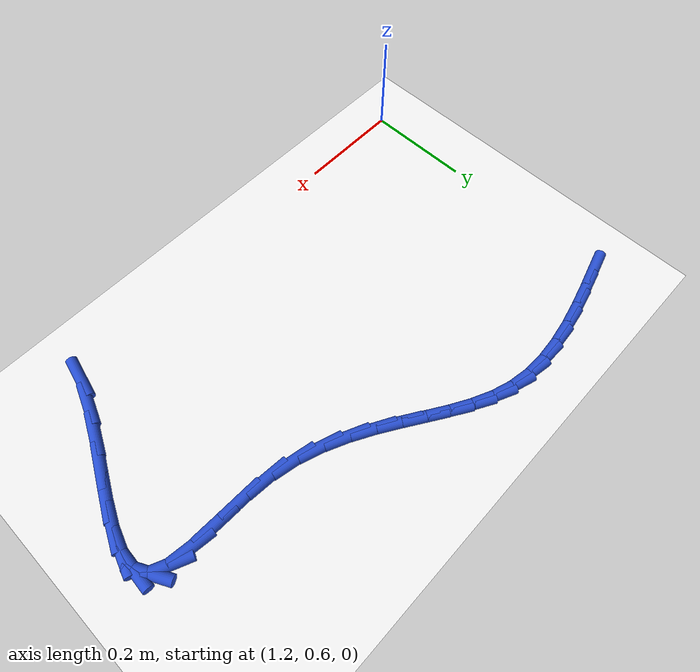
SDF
<sdf version="1.6">
 <world name="default">
  <model name="ground_plane">
   <static>1</static>
   <link name="link">
    <collision name="collision">
     <geometry><plane><normal>0 0 1</normal><size>100 100</size></plane></geometry>
     <surface><friction><ode><mu>100</mu><mu2>50</mu2></ode></friction></surface>
    </collision>
    <visual name="visual">
     <cast_shadows>0</cast_shadows>
     <geometry><plane><normal>0 0 1</normal><size>100 100</size></plane></geometry>
     <material>
      <script><uri>file://media/materials/scripts/gazebo.material</uri><name>Gazebo/WhiteGlow</name></script>
     </material>
    </visual>
   </link>
  </model>
  <model name="line">
   <link name="link_45">
    <pose>1.212922668888443 1.1336674801054099 0.01 0 1.57 0.26476621296448294</pose>
    <collision name="collision">
     <geometry><cylinder><radius>0.01</radius><length>0.08</length></cylinder></geometry>
    </collision>
    <visual name="visual">
     <material>
      <script><name>Gazebo/Blue</name><uri>file://media/materials/scripts/gazebo.material</uri></script>
     </material>
     <geometry><cylinder><radius>0.01</radius><length>0.08</length></cylinder></geometry>
    </visual>
   </link>
   <link name="link_46">
    <pose>1.2562330443745857 1.145410290002569 0.01 0 1.57 0.243206262841886</pose>
    <collision name="collision">
     <geometry><cylinder><radius>0.01</radius><length>0.08</length></cylinder></geometry>
    </collision>
    <visual name="visual">
     <material>
      <script><name>Gazebo/Blue</name><uri>file://media/materials/scripts/gazebo.material</uri></script>
     </material>
     <geometry><cylinder><radius>0.01</radius><length>0.08</length></cylinder></geometry>
    </visual>
   </link>
   <link name="link_47">
    <pose>1.2988552021292605 1.1559855999121016 0.01 0 1.57 0.20406574075876835</pose>
    <collision name="collision">
     <geometry><cylinder><radius>0.01</radius><length>0.08</length></cylinder></geometry>
    </collision>
    <visual name="visual">
     <material>
      <script><name>Gazebo/Blue</name><uri>file://media/materials/scripts/gazebo.material</uri></script>
     </material>
     <geometry><cylinder><radius>0.01</radius><length>0.08</length></cylinder></geometry>
    </visual>
   </link>
   <link name="link_48">
    <pose>1.340679602740774 1.1646410072881557 0.01 0 1.57 0.14519595741874367</pose>
    <collision name="collision">
     <geometry><cylinder><radius>0.01</radius><length>0.08</length></cylinder></geometry>
    </collision>
    <visual name="visual">
     <material>
      <script><name>Gazebo/Blue</name><uri>file://media/materials/scripts/gazebo.material</uri></script>
     </material>
     <geometry><cylinder><radius>0.01</radius><length>0.08</length></cylinder></geometry>
    </visual>
   </link>
   <link name="link_49">
    <pose>1.3815967067974313 1.1706241095848755 0.01 0 1.57 0.06403207982112052</pose>
    <collision name="collision">
     <geometry><cylinder><radius>0.01</radius><length>0.08</length></cylinder></geometry>
    </collision>
    <visual name="visual">
     <material>
      <script><name>Gazebo/Blue</name><uri>file://media/materials/scripts/gazebo.material</uri></script>
     </material>
     <geometry><cylinder><radius>0.01</radius><length>0.08</length></cylinder></geometry>
    </visual>
   </link>
   <link name="link_50">
    <pose>1.4214969748875377 1.1731825042564084 0.01 0 1.57 -0.04172333420575803</pose>
    <collision name="collision">
     <geometry><cylinder><radius>0.01</radius><length>0.08</length></cylinder></geometry>
    </collision>
    <visual name="visual">
     <material>
      <script><name>Gazebo/Blue</name><uri>file://media/materials/scripts/gazebo.material</uri></script>
     </material>
     <geometry><cylinder><radius>0.01</radius><length>0.08</length></cylinder></geometry>
    </visual>
   </link>
   <link name="link_51">
    <pose>1.460270867599398 1.1715637887568984 0.01 0 1.57 -0.172704927068935</pose>
    <collision name="collision">
     <geometry><cylinder><radius>0.01</radius><length>0.08</length></cylinder></geometry>
    </collision>
    <visual name="visual">
     <material>
      <script><name>Gazebo/Blue</name><uri>file://media/materials/scripts/gazebo.material</uri></script>
     </material>
     <geometry><cylinder><radius>0.01</radius><length>0.08</length></cylinder></geometry>
    </visual>
   </link>
   <link name="link_52">
    <pose>1.4978088455213197 1.165015560540493 0.01 0 1.57 -0.3195023220120659</pose>
    <collision name="collision">
     <geometry><cylinder><radius>0.01</radius><length>0.08</length></cylinder></geometry>
    </collision>
    <visual name="visual">
     <material>
      <script><name>Gazebo/Blue</name><uri>file://media/materials/scripts/gazebo.material</uri></script>
     </material>
     <geometry><cylinder><radius>0.01</radius><length>0.08</length></cylinder></geometry>
    </visual>
   </link>
   <link name="link_53">
    <pose>1.5340769796274079 1.1530167139164735 0.01 0 1.57 -0.44034441701610094</pose>
    <collision name="collision">
     <geometry><cylinder><radius>0.01</radius><length>0.08</length></cylinder></geometry>
    </collision>
    <visual name="visual">
     <material>
      <script><name>Gazebo/Blue</name><uri>file://media/materials/scripts/gazebo.material</uri></script>
     </material>
     <geometry><cylinder><radius>0.01</radius><length>0.08</length></cylinder></geometry>
    </visual>
   </link>
   <link name="link_54">
    <pose>1.5694649117307469 1.136341872635817 0.01 0 1.57 -0.5212878407982343</pose>
    <collision name="collision">
     <geometry><cylinder><radius>0.01</radius><length>0.08</length></cylinder></geometry>
    </collision>
    <visual name="visual">
     <material>
      <script><name>Gazebo/Blue</name><uri>file://media/materials/scripts/gazebo.material</uri></script>
     </material>
     <geometry><cylinder><radius>0.01</radius><length>0.08</length></cylinder></geometry>
    </visual>
   </link>
   <link name="link_55">
    <pose>1.604509693510012 1.1162165963621486 0.01 0 1.57 -0.565212544174314</pose>
    <collision name="collision">
     <geometry><cylinder><radius>0.01</radius><length>0.08</length></cylinder></geometry>
    </collision>
    <visual name="visual">
     <material>
      <script><name>Gazebo/Blue</name><uri>file://media/materials/scripts/gazebo.material</uri></script>
     </material>
     <geometry><cylinder><radius>0.01</radius><length>0.08</length></cylinder></geometry>
    </visual>
   </link>
   <link name="link_56">
    <pose>1.6397485259787012 1.093866901583568 0.01 0 1.57 -0.5757406119897641</pose>
    <collision name="collision">
     <geometry><cylinder><radius>0.01</radius><length>0.08</length></cylinder></geometry>
    </collision>
    <visual name="visual">
     <material>
      <script><name>Gazebo/Blue</name><uri>file://media/materials/scripts/gazebo.material</uri></script>
     </material>
     <geometry><cylinder><radius>0.01</radius><length>0.08</length></cylinder></geometry>
    </visual>
   </link>
   <link name="link_57">
    <pose>1.6757186101503105 1.0705188047881729 0.01 0 1.57 -0.5556276335707667</pose>
    <collision name="collision">
     <geometry><cylinder><radius>0.01</radius><length>0.08</length></cylinder></geometry>
    </collision>
    <visual name="visual">
     <material>
      <script><name>Gazebo/Blue</name><uri>file://media/materials/scripts/gazebo.material</uri></script>
     </material>
     <geometry><cylinder><radius>0.01</radius><length>0.08</length></cylinder></geometry>
    </visual>
   </link>
   <link name="link_58">
    <pose>1.7129571470383385 1.0473983224640606 0.01 0 1.57 -0.5066215073512923</pose>
    <collision name="collision">
     <geometry><cylinder><radius>0.01</radius><length>0.08</length></cylinder></geometry>
    </collision>
    <visual name="visual">
     <material>
      <script><name>Gazebo/Blue</name><uri>file://media/materials/scripts/gazebo.material</uri></script>
     </material>
     <geometry><cylinder><radius>0.01</radius><length>0.08</length></cylinder></geometry>
    </visual>
   </link>
   <link name="link_59">
    <pose>1.7520013376562806 1.0257314710993297 0.01 0 1.57 -0.4301244598763836</pose>
    <collision name="collision">
     <geometry><cylinder><radius>0.01</radius><length>0.08</length></cylinder></geometry>
    </collision>
    <visual name="visual">
     <material>
      <script><name>Gazebo/Blue</name><uri>file://media/materials/scripts/gazebo.material</uri></script>
     </material>
     <geometry><cylinder><radius>0.01</radius><length>0.08</length></cylinder></geometry>
    </visual>
   </link>
   <link name="link_60">
    <pose>1.7933883830176351 1.0067442671820779 0.01 0 1.57 -0.3283605476052916</pose>
    <collision name="collision">
     <geometry><cylinder><radius>0.01</radius><length>0.08</length></cylinder></geometry>
    </collision>
    <visual name="visual">
     <material>
      <script><name>Gazebo/Blue</name><uri>file://media/materials/scripts/gazebo.material</uri></script>
     </material>
     <geometry><cylinder><radius>0.01</radius><length>0.08</length></cylinder></geometry>
    </visual>
   </link>
   <link name="link_61">
    <pose>1.8376554841358985 0.9916627272004038 0.01 0 1.57 -0.20570927977166567</pose>
    <collision name="collision">
     <geometry><cylinder><radius>0.01</radius><length>0.08</length></cylinder></geometry>
    </collision>
    <visual name="visual">
     <material>
      <script><name>Gazebo/Blue</name><uri>file://media/materials/scripts/gazebo.material</uri></script>
     </material>
     <geometry><cylinder><radius>0.01</radius><length>0.08</length></cylinder></geometry>
    </visual>
   </link>
   <link name="link_62">
    <pose>1.885339842024568 0.981712867642405 0.01 0 1.57 -0.08412807927843689</pose>
    <collision name="collision">
     <geometry><cylinder><radius>0.01</radius><length>0.08</length></cylinder></geometry>
    </collision>
    <visual name="visual">
     <material>
      <script><name>Gazebo/Blue</name><uri>file://media/materials/scripts/gazebo.material</uri></script>
     </material>
     <geometry><cylinder><radius>0.01</radius><length>0.08</length></cylinder></geometry>
    </visual>
   </link>
   <link name="link_63">
    <pose>1.9362745459773723 0.9774176909599253 0.01 0 1.57 -0.0230302165221149</pose>
    <collision name="collision">
     <geometry><cylinder><radius>0.01</radius><length>0.08</length></cylinder></geometry>
    </collision>
    <visual name="visual">
     <material>
      <script><name>Gazebo/Blue</name><uri>file://media/materials/scripts/gazebo.material</uri></script>
     </material>
     <geometry><cylinder><radius>0.01</radius><length>0.08</length></cylinder></geometry>
    </visual>
   </link>
   <link name="link_64">
    <pose>1.9872316440687687 0.9762439304329135 0.01 0 1.57 -0.030168695830535077</pose>
    <collision name="collision">
     <geometry><cylinder><radius>0.01</radius><length>0.08</length></cylinder></geometry>
    </collision>
    <visual name="visual">
     <material>
      <script><name>Gazebo/Blue</name><uri>file://media/materials/scripts/gazebo.material</uri></script>
     </material>
     <geometry><cylinder><radius>0.01</radius><length>0.08</length></cylinder></geometry>
    </visual>
   </link>
   <link name="link_65">
    <pose>2.034151556813516 0.9748279882574994 0.01 0 1.57 -0.1286348896563046</pose>
    <collision name="collision">
     <geometry><cylinder><radius>0.01</radius><length>0.08</length></cylinder></geometry>
    </collision>
    <visual name="visual">
     <material>
      <script><name>Gazebo/Blue</name><uri>file://media/materials/scripts/gazebo.material</uri></script>
     </material>
     <geometry><cylinder><radius>0.01</radius><length>0.08</length></cylinder></geometry>
    </visual>
   </link>
   <link name="link_66">
    <pose>2.0729746883595292 0.9698062502884848 0.01 0 1.57 -0.4225766071582267</pose>
    <collision name="collision">
     <geometry><cylinder><radius>0.01</radius><length>0.08</length></cylinder></geometry>
    </collision>
    <visual name="visual">
     <material>
      <script><name>Gazebo/Blue</name><uri>file://media/materials/scripts/gazebo.material</uri></script>
     </material>
     <geometry><cylinder><radius>0.01</radius><length>0.08</length></cylinder></geometry>
    </visual>
   </link>
   <link name="link_67">
    <pose>2.099641442854722 0.9578151023806711 0.01 0 1.57 -1.079901413770883</pose>
    <collision name="collision">
     <geometry><cylinder><radius>0.01</radius><length>0.08</length></cylinder></geometry>
    </collision>
    <visual name="visual">
     <material>
      <script><name>Gazebo/Blue</name><uri>file://media/materials/scripts/gazebo.material</uri></script>
     </material>
     <geometry><cylinder><radius>0.01</radius><length>0.08</length></cylinder></geometry>
    </visual>
   </link>
   <link name="link_68">
    <pose>2.1111670909713003 0.936253223719382 0.01 0 1.57 1.509301783870213</pose>
    <collision name="collision">
     <geometry><cylinder><radius>0.01</radius><length>0.08</length></cylinder></geometry>
    </collision>
    <visual name="visual">
     <material>
      <script><name>Gazebo/Blue</name><uri>file://media/materials/scripts/gazebo.material</uri></script>
     </material>
     <geometry><cylinder><radius>0.01</radius><length>0.08</length></cylinder></geometry>
    </visual>
   </link>
   <link name="link_69">
    <pose>2.1092965482862343 0.9058735488185439 0.01 0 1.57 1.2559235450657842</pose>
    <collision name="collision">
     <geometry><cylinder><radius>0.01</radius><length>0.08</length></cylinder></geometry>
    </collision>
    <visual name="visual">
     <material>
      <script><name>Gazebo/Blue</name><uri>file://media/materials/scripts/gazebo.material</uri></script>
     </material>
     <geometry><cylinder><radius>0.01</radius><length>0.08</length></cylinder></geometry>
    </visual>
   </link>
   <link name="link_70">
    <pose>2.097075233075772 0.8683513262762789 0.01 0 1.57 1.1444396874630016</pose>
    <collision name="collision">
     <geometry><cylinder><radius>0.01</radius><length>0.08</length></cylinder></geometry>
    </collision>
    <visual name="visual">
     <material>
      <script><name>Gazebo/Blue</name><uri>file://media/materials/scripts/gazebo.material</uri></script>
     </material>
     <geometry><cylinder><radius>0.01</radius><length>0.08</length></cylinder></geometry>
    </visual>
   </link>
   <link name="link_71">
    <pose>2.0775486015807476 0.825361831615125 0.01 0 1.57 1.1004040789737013</pose>
    <collision name="collision">
     <geometry><cylinder><radius>0.01</radius><length>0.08</length></cylinder></geometry>
    </collision>
    <visual name="visual">
     <material>
      <script><name>Gazebo/Blue</name><uri>file://media/materials/scripts/gazebo.material</uri></script>
     </material>
     <geometry><cylinder><radius>0.01</radius><length>0.08</length></cylinder></geometry>
    </visual>
   </link>
   <link name="link_72">
    <pose>2.053762110042004 0.7785803403576236 0.01 0 1.57 1.0981619692004918</pose>
    <collision name="collision">
     <geometry><cylinder><radius>0.01</radius><length>0.08</length></cylinder></geometry>
    </collision>
    <visual name="visual">
     <material>
      <script><name>Gazebo/Blue</name><uri>file://media/materials/scripts/gazebo.material</uri></script>
     </material>
     <geometry><cylinder><radius>0.01</radius><length>0.08</length></cylinder></geometry>
    </visual>
   </link>
   <link name="link_73">
    <pose>2.028761214700378 0.7296821280263144 0.01 0 1.57 1.1317641207325282</pose>
    <collision name="collision">
     <geometry><cylinder><radius>0.01</radius><length>0.08</length></cylinder></geometry>
    </collision>
    <visual name="visual">
     <material>
      <script><name>Gazebo/Blue</name><uri>file://media/materials/scripts/gazebo.material</uri></script>
     </material>
     <geometry><cylinder><radius>0.01</radius><length>0.08</length></cylinder></geometry>
    </visual>
   </link>
   <link name="link_74">
    <pose>2.0055913717967098 0.6803424701437361 0.01 0 1.57 1.2074110265667841</pose>
    <collision name="collision">
     <geometry><cylinder><radius>0.01</radius><length>0.08</length></cylinder></geometry>
    </collision>
    <visual name="visual">
     <material>
      <script><name>Gazebo/Blue</name><uri>file://media/materials/scripts/gazebo.material</uri></script>
     </material>
     <geometry><cylinder><radius>0.01</radius><length>0.08</length></cylinder></geometry>
    </visual>
   </link>
   <link name="link_75">
    <pose>1.9872980375718368 0.6322366422324299 0.01 0 1.57 1.345229741580537</pose>
    <collision name="collision">
     <geometry><cylinder><radius>0.01</radius><length>0.08</length></cylinder></geometry>
    </collision>
    <visual name="visual">
     <material>
      <script><name>Gazebo/Blue</name><uri>file://media/materials/scripts/gazebo.material</uri></script>
     </material>
     <geometry><cylinder><radius>0.01</radius><length>0.08</length></cylinder></geometry>
    </visual>
   </link>
  </model>
 </world>
</sdf>
